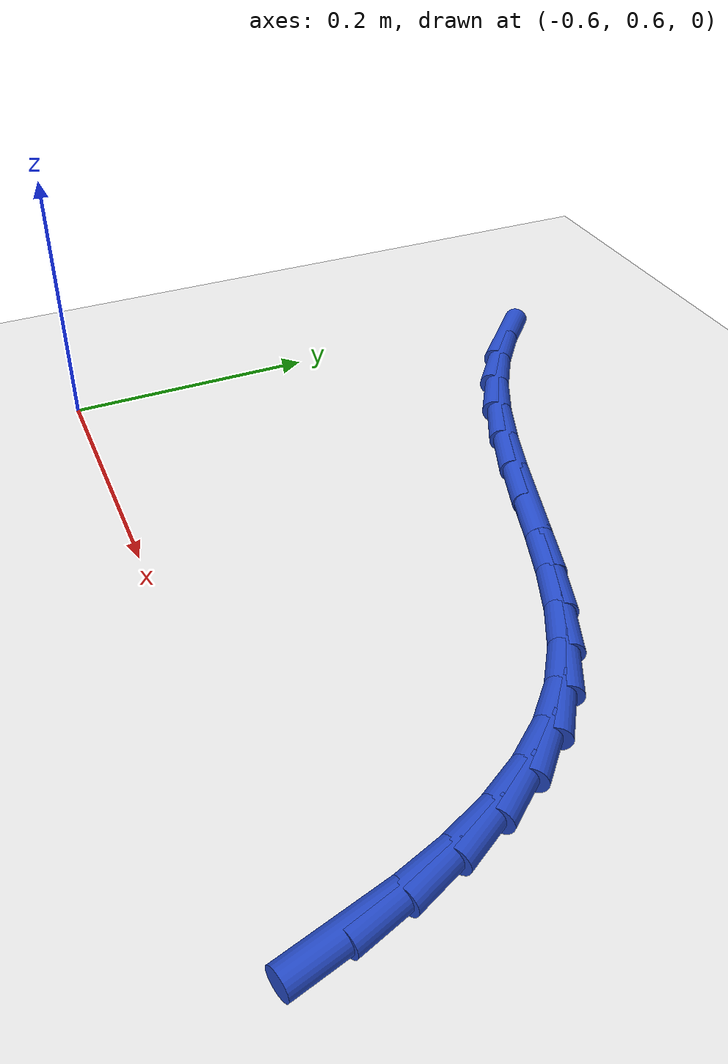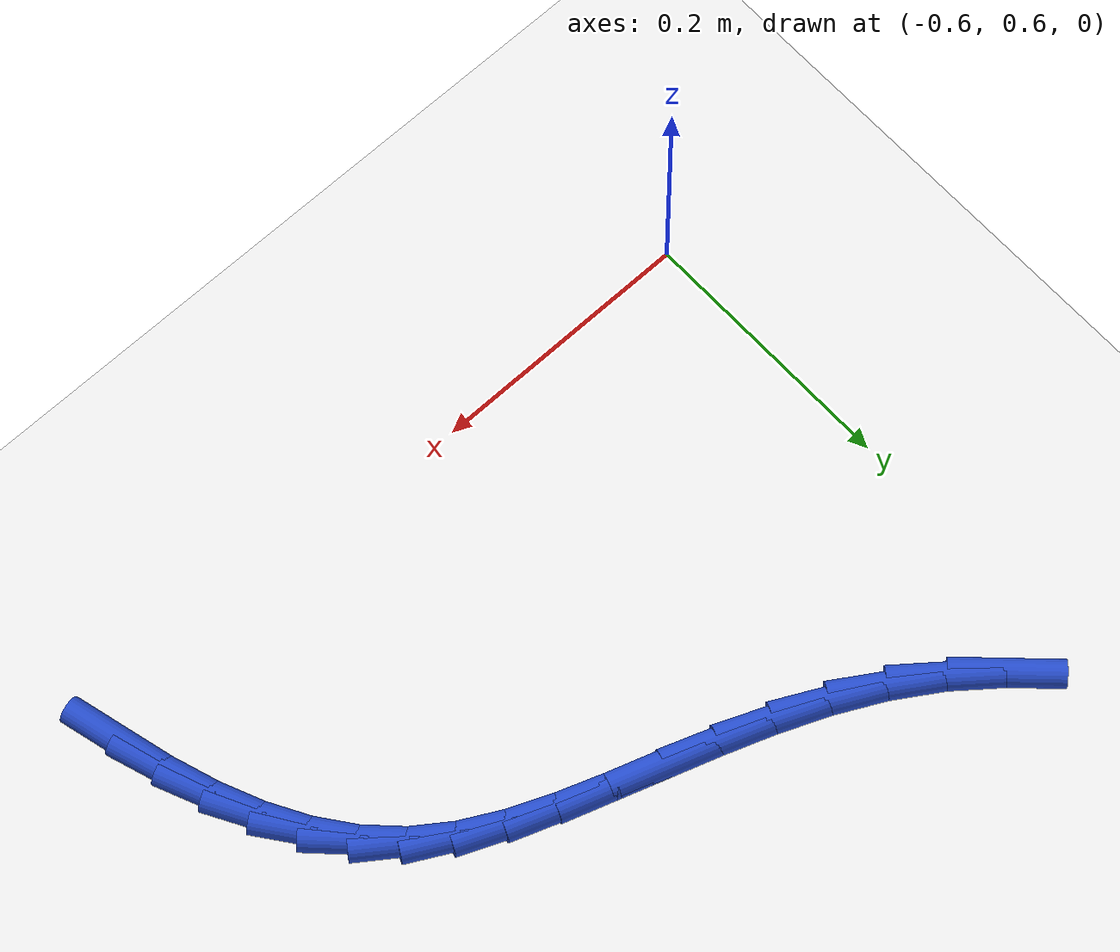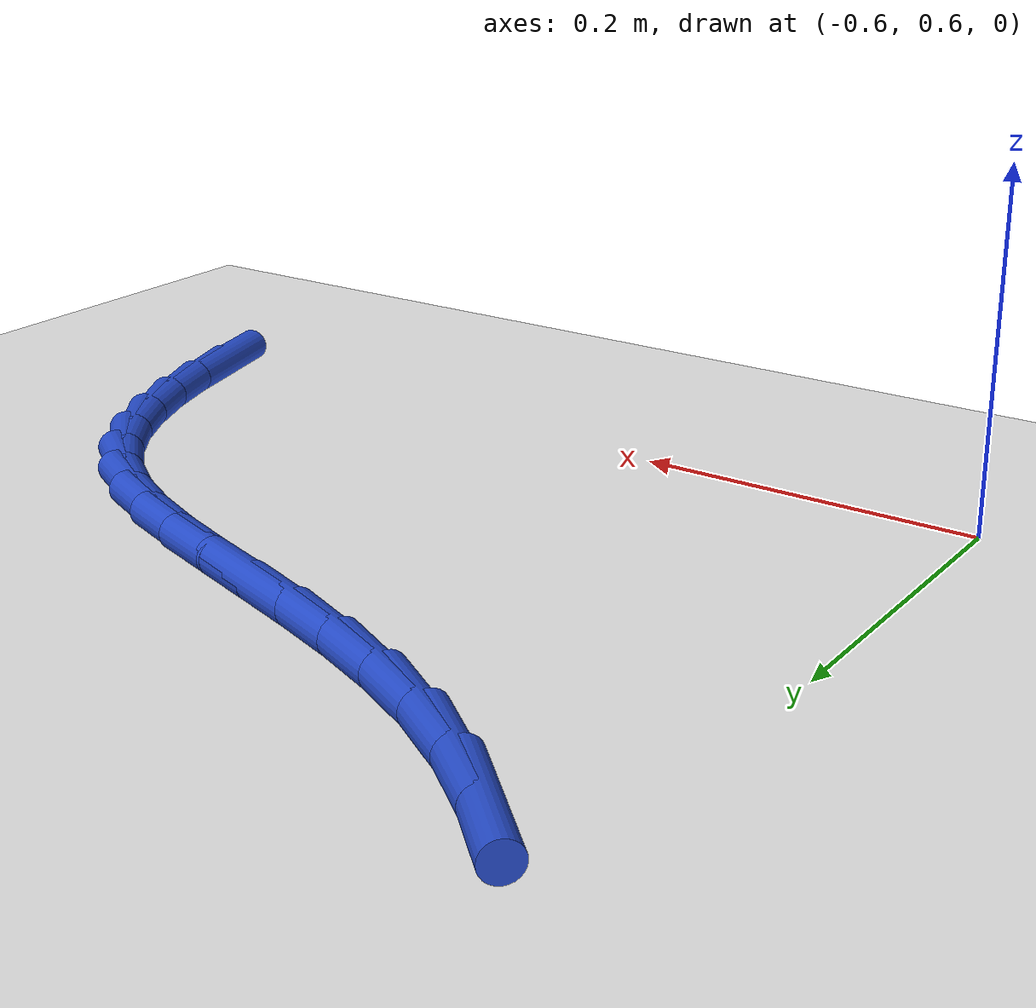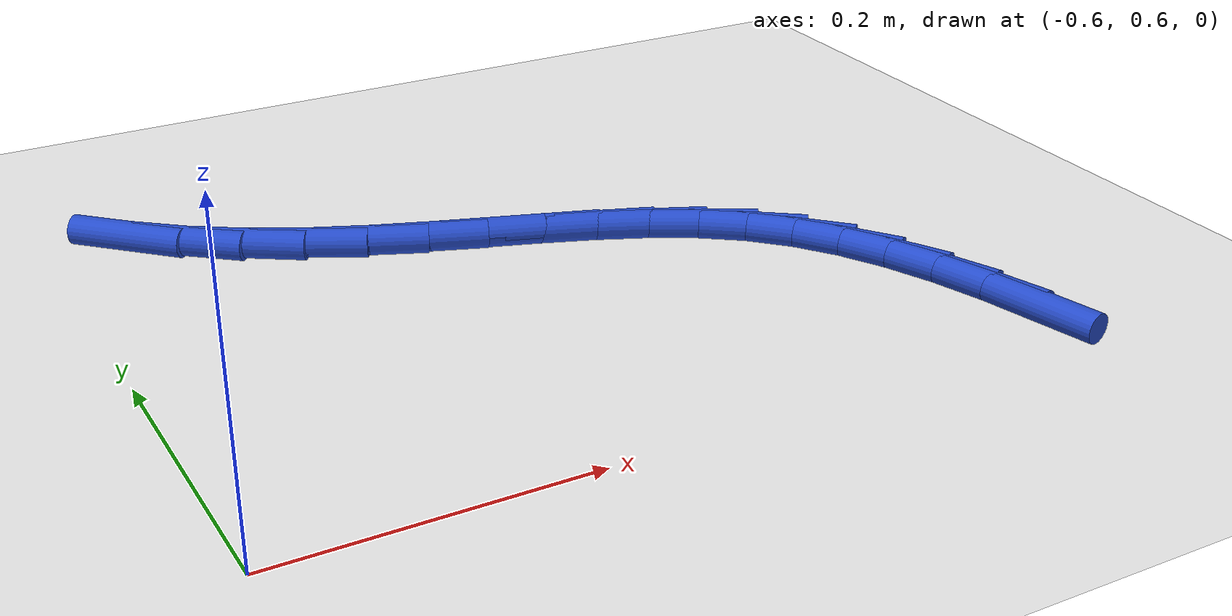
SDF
<sdf version="1.6">
 <world name="default">
  <model name="ground_plane">
   <static>1</static>
   <link name="link">
    <collision name="collision">
     <geometry><plane><normal>0 0 1</normal><size>100 100</size></plane></geometry>
     <surface><friction><ode><mu>100</mu><mu2>50</mu2></ode></friction></surface>
    </collision>
    <visual name="visual">
     <cast_shadows>0</cast_shadows>
     <geometry><plane><normal>0 0 1</normal><size>100 100</size></plane></geometry>
     <material>
      <script><uri>file://media/materials/scripts/gazebo.material</uri><name>Gazebo/WhiteGlow</name></script>
     </material>
    </visual>
   </link>
  </model>
  <model name="line">
   <link name="link_16">
    <pose>-0.08479364713524515 0.6198392114364177 0.01 0 1.57 -1.325901970148176</pose>
    <collision name="collision">
     <geometry><cylinder><radius>0.01</radius><length>0.08</length></cylinder></geometry>
    </collision>
    <visual name="visual">
     <material>
      <script><name>Gazebo/Blue</name><uri>file://media/materials/scripts/gazebo.material</uri></script>
     </material>
     <geometry><cylinder><radius>0.01</radius><length>0.08</length></cylinder></geometry>
    </visual>
   </link>
   <link name="link_17">
    <pose>-0.09398014165822824 0.6565983601471629 0.01 0 1.57 -1.2572388854309717</pose>
    <collision name="collision">
     <geometry><cylinder><radius>0.01</radius><length>0.08</length></cylinder></geometry>
    </collision>
    <visual name="visual">
     <material>
      <script><name>Gazebo/Blue</name><uri>file://media/materials/scripts/gazebo.material</uri></script>
     </material>
     <geometry><cylinder><radius>0.01</radius><length>0.08</length></cylinder></geometry>
    </visual>
   </link>
   <link name="link_18">
    <pose>-0.10523980565635388 0.6913231370712055 0.01 0 1.57 -1.170571345920834</pose>
    <collision name="collision">
     <geometry><cylinder><radius>0.01</radius><length>0.08</length></cylinder></geometry>
    </collision>
    <visual name="visual">
     <material>
      <script><name>Gazebo/Blue</name><uri>file://media/materials/scripts/gazebo.material</uri></script>
     </material>
     <geometry><cylinder><radius>0.01</radius><length>0.08</length></cylinder></geometry>
    </visual>
   </link>
   <link name="link_19">
    <pose>-0.11891739982280622 0.7236534083474341 0.01 0 1.57 -1.0634555412669138</pose>
    <collision name="collision">
     <geometry><cylinder><radius>0.01</radius><length>0.08</length></cylinder></geometry>
    </collision>
    <visual name="visual">
     <material>
      <script><name>Gazebo/Blue</name><uri>file://media/materials/scripts/gazebo.material</uri></script>
     </material>
     <geometry><cylinder><radius>0.01</radius><length>0.08</length></cylinder></geometry>
    </visual>
   </link>
   <link name="link_20">
    <pose>-0.13535768485076927 0.7532290401147367 0.01 0 1.57 -0.9345396239350764</pose>
    <collision name="collision">
     <geometry><cylinder><radius>0.01</radius><length>0.08</length></cylinder></geometry>
    </collision>
    <visual name="visual">
     <material>
      <script><name>Gazebo/Blue</name><uri>file://media/materials/scripts/gazebo.material</uri></script>
     </material>
     <geometry><cylinder><radius>0.01</radius><length>0.08</length></cylinder></geometry>
    </visual>
   </link>
   <link name="link_21">
    <pose>-0.15490542143342712 0.7796898985120015 0.01 0 1.57 -0.7850937730519277</pose>
    <collision name="collision">
     <geometry><cylinder><radius>0.01</radius><length>0.08</length></cylinder></geometry>
    </collision>
    <visual name="visual">
     <material>
      <script><name>Gazebo/Blue</name><uri>file://media/materials/scripts/gazebo.material</uri></script>
     </material>
     <geometry><cylinder><radius>0.01</radius><length>0.08</length></cylinder></geometry>
    </visual>
   </link>
   <link name="link_22">
    <pose>-0.17790537026396383 0.8026758496781169 0.01 0 1.57 -0.6264064705719183</pose>
    <collision name="collision">
     <geometry><cylinder><radius>0.01</radius><length>0.08</length></cylinder></geometry>
    </collision>
    <visual name="visual">
     <material>
      <script><name>Gazebo/Blue</name><uri>file://media/materials/scripts/gazebo.material</uri></script>
     </material>
     <geometry><cylinder><radius>0.01</radius><length>0.08</length></cylinder></geometry>
    </visual>
   </link>
   <link name="link_23">
    <pose>-0.2045810512284153 0.8219790448971042 0.01 0 1.57 -0.4961131739949698</pose>
    <collision name="collision">
     <geometry><cylinder><radius>0.01</radius><length>0.08</length></cylinder></geometry>
    </collision>
    <visual name="visual">
     <material>
      <script><name>Gazebo/Blue</name><uri>file://media/materials/scripts/gazebo.material</uri></script>
     </material>
     <geometry><cylinder><radius>0.01</radius><length>0.08</length></cylinder></geometry>
    </visual>
   </link>
   <link name="link_24">
    <pose>-0.2345236037591797 0.8381859402042201 0.01 0 1.57 -0.4045256632904601</pose>
    <collision name="collision">
     <geometry><cylinder><radius>0.01</radius><length>0.08</length></cylinder></geometry>
    </collision>
    <visual name="visual">
     <material>
      <script><name>Gazebo/Blue</name><uri>file://media/materials/scripts/gazebo.material</uri></script>
     </material>
     <geometry><cylinder><radius>0.01</radius><length>0.08</length></cylinder></geometry>
    </visual>
   </link>
   <link name="link_25">
    <pose>-0.26711865620953484 0.8521411248923817 0.01 0 1.57 -0.34760650934976645</pose>
    <collision name="collision">
     <geometry><cylinder><radius>0.01</radius><length>0.08</length></cylinder></geometry>
    </collision>
    <visual name="visual">
     <material>
      <script><name>Gazebo/Blue</name><uri>file://media/materials/scripts/gazebo.material</uri></script>
     </material>
     <geometry><cylinder><radius>0.01</radius><length>0.08</length></cylinder></geometry>
    </visual>
   </link>
   <link name="link_26">
    <pose>-0.30175172769079317 0.8646893254684409 0.01 0 1.57 -0.32092844916377644</pose>
    <collision name="collision">
     <geometry><cylinder><radius>0.01</radius><length>0.08</length></cylinder></geometry>
    </collision>
    <visual name="visual">
     <material>
      <script><name>Gazebo/Blue</name><uri>file://media/materials/scripts/gazebo.material</uri></script>
     </material>
     <geometry><cylinder><radius>0.01</radius><length>0.08</length></cylinder></geometry>
    </visual>
   </link>
   <link name="link_27">
    <pose>-0.3378083373142678 0.8766752684392513 0.01 0 1.57 -0.32125870519632155</pose>
    <collision name="collision">
     <geometry><cylinder><radius>0.01</radius><length>0.08</length></cylinder></geometry>
    </collision>
    <visual name="visual">
     <material>
      <script><name>Gazebo/Blue</name><uri>file://media/materials/scripts/gazebo.material</uri></script>
     </material>
     <geometry><cylinder><radius>0.01</radius><length>0.08</length></cylinder></geometry>
    </visual>
   </link>
   <link name="link_28">
    <pose>-0.37467400419127145 0.8889436803116658 0.01 0 1.57 -0.3468429792717593</pose>
    <collision name="collision">
     <geometry><cylinder><radius>0.01</radius><length>0.08</length></cylinder></geometry>
    </collision>
    <visual name="visual">
     <material>
      <script><name>Gazebo/Blue</name><uri>file://media/materials/scripts/gazebo.material</uri></script>
     </material>
     <geometry><cylinder><radius>0.01</radius><length>0.08</length></cylinder></geometry>
    </visual>
   </link>
   <link name="link_29">
    <pose>-0.4117342474331166 0.9023392875925369 0.01 0 1.57 -0.3971311076099659</pose>
    <collision name="collision">
     <geometry><cylinder><radius>0.01</radius><length>0.08</length></cylinder></geometry>
    </collision>
    <visual name="visual">
     <material>
      <script><name>Gazebo/Blue</name><uri>file://media/materials/scripts/gazebo.material</uri></script>
     </material>
     <geometry><cylinder><radius>0.01</radius><length>0.08</length></cylinder></geometry>
    </visual>
   </link>
   <link name="link_30">
    <pose>-0.44837458615111664 0.917706816788718 0.01 0 1.57 -0.472175761600495</pose>
    <collision name="collision">
     <geometry><cylinder><radius>0.01</radius><length>0.08</length></cylinder></geometry>
    </collision>
    <visual name="visual">
     <material>
      <script><name>Gazebo/Blue</name><uri>file://media/materials/scripts/gazebo.material</uri></script>
     </material>
     <geometry><cylinder><radius>0.01</radius><length>0.08</length></cylinder></geometry>
    </visual>
   </link>
   <link name="link_31">
    <pose>-0.4839805394565837 0.9358909944070615 0.01 0 1.57 -0.5716167457707252</pose>
    <collision name="collision">
     <geometry><cylinder><radius>0.01</radius><length>0.08</length></cylinder></geometry>
    </collision>
    <visual name="visual">
     <material>
      <script><name>Gazebo/Blue</name><uri>file://media/materials/scripts/gazebo.material</uri></script>
     </material>
     <geometry><cylinder><radius>0.01</radius><length>0.08</length></cylinder></geometry>
    </visual>
   </link>
   <link name="link_32">
    <pose>-0.5179386151304062 0.957734590785243 0.01 0 1.57 -0.680156577747959</pose>
    <collision name="collision">
     <geometry><cylinder><radius>0.01</radius><length>0.08</length></cylinder></geometry>
    </collision>
    <visual name="visual">
     <material>
      <script><name>Gazebo/Blue</name><uri>file://media/materials/scripts/gazebo.material</uri></script>
     </material>
     <geometry><cylinder><radius>0.01</radius><length>0.08</length></cylinder></geometry>
    </visual>
   </link>
   <link name="link_33">
    <pose>-0.5498884769271363 0.9835794850374405 0.01 0 1.57 -0.7660693091415565</pose>
    <collision name="collision">
     <geometry><cylinder><radius>0.01</radius><length>0.08</length></cylinder></geometry>
    </collision>
    <visual name="visual">
     <material>
      <script><name>Gazebo/Blue</name><uri>file://media/materials/scripts/gazebo.material</uri></script>
     </material>
     <geometry><cylinder><radius>0.01</radius><length>0.08</length></cylinder></geometry>
    </visual>
   </link>
  </model>
 </world>
</sdf>
